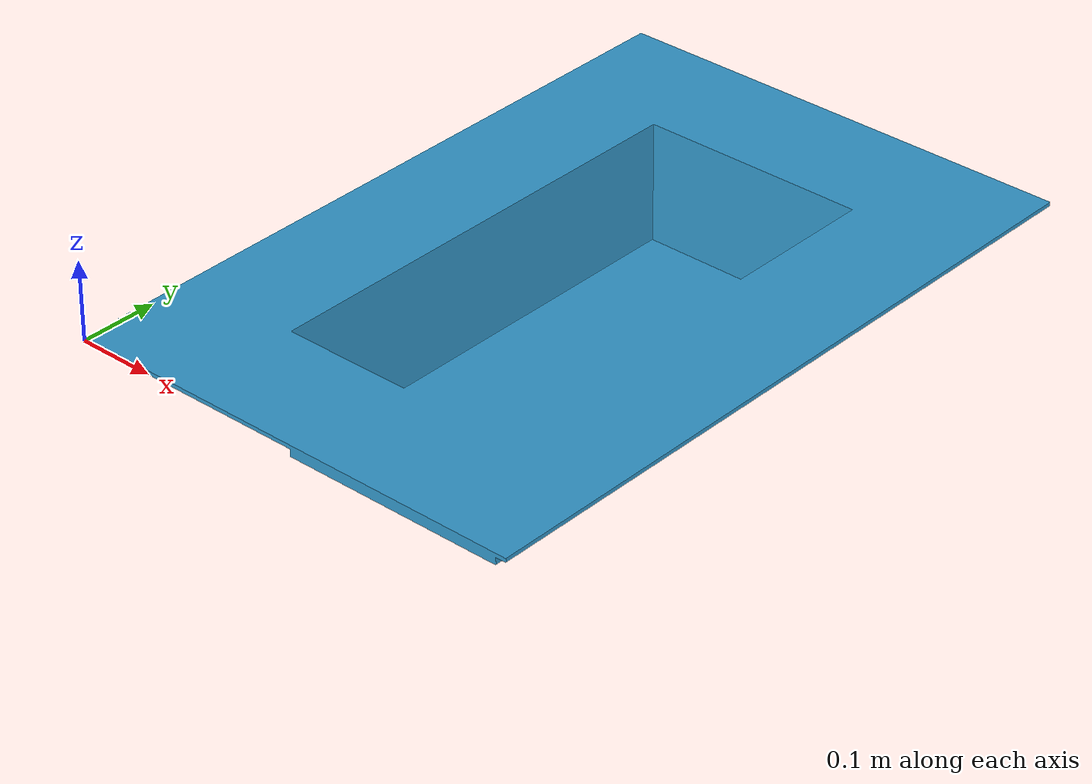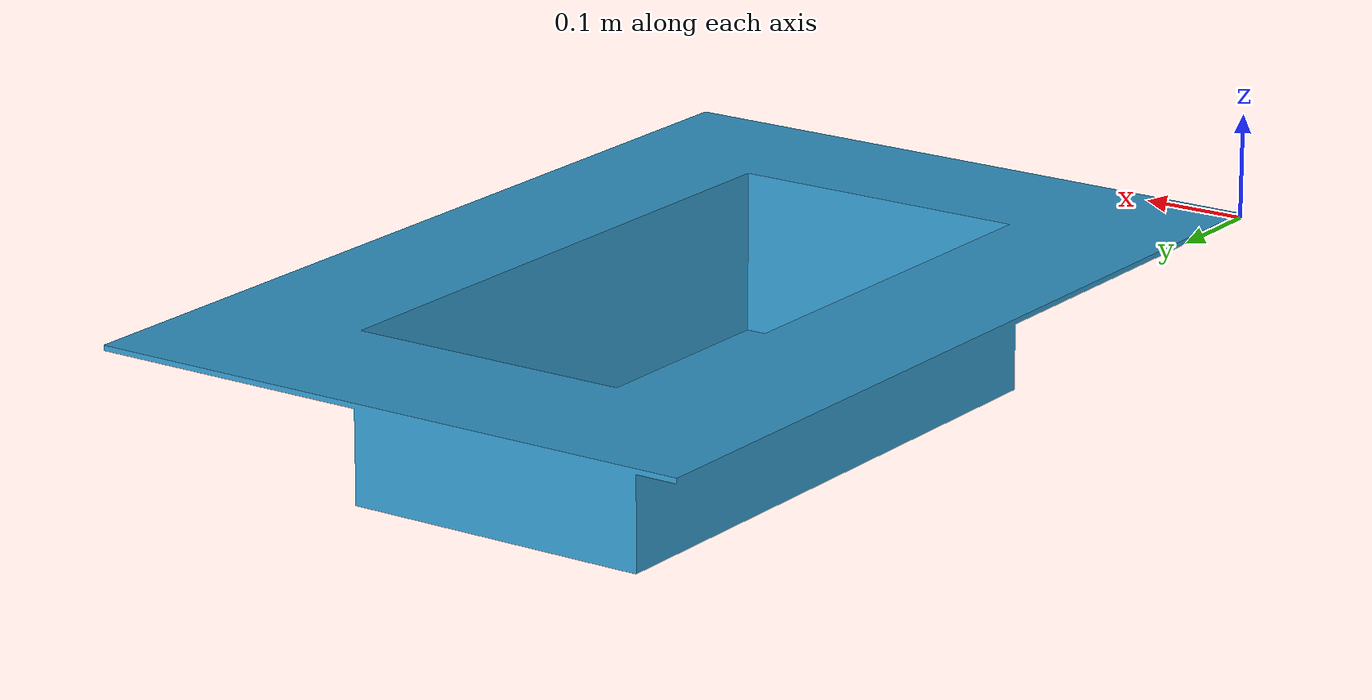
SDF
<?xml version="1.0"?>
<sdf version='1.9'>
  <model name="BRUVSbin">
    <static>true</static>
    <pose>0 0 0 0 0 0</pose>

    <link name="bin">
      <visual name="visual">
        <geometry>
          <mesh>
            <uri>model:/bruvs/bruvs.stl</uri>
            <scale>0.001 0.001 0.001</scale>
          </mesh>
        </geometry>

        <material>
          <ambient>0.2 0.6 0.8 1</ambient>
          <diffuse>0.2 0.6 0.8 1</diffuse>
          <specular>0.1 0.1 0.1 1</specular>
          <emissive>0 0 0 1</emissive>
        </material>

      </visual>

      <collision name="collision">
        <geometry>
          <mesh>
            <uri>model:/bruvs/bruvs.stl</uri>
            <scale>0.001 0.001 0.001</scale>
          </mesh>
        </geometry>
      </collision>

    </link>
  </model>
</sdf>
